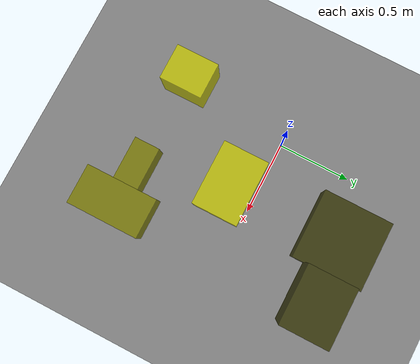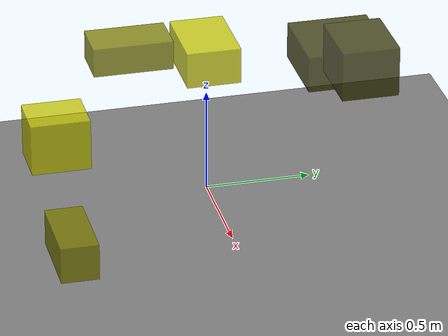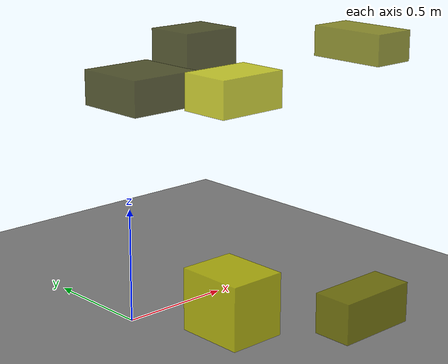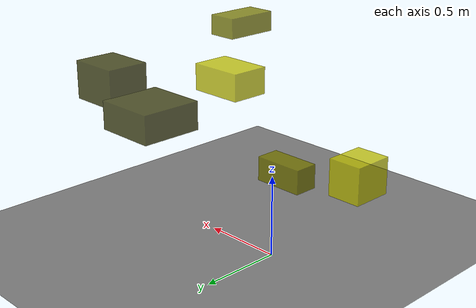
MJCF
<?xml version="1.0"?>
<mujoco model="obstacle_scene">
  <compiler angle="radian" coordinate="local"/>
  <option timestep="0.001" gravity="0 0 -9.81"/>

  <asset>
    <material name="obstacle_mat" rgba="0.8 0.8 0.0 0.8"/>
    <material name="ground_mat" rgba="0.5 0.5 0.5 1"/>
  </asset>

  <worldbody>
    <!-- Ground plane -->
    <geom name="ground" type="plane" size="3 3 0.1" material="ground_mat"/>

    <!-- Obstacles -->
    <body name="obstacle_0" pos="0.468694 0.494965 0.874789">
      <geom name="obs_0" type="box" size="0.185250 0.185542 0.084485" rgba="0.2 0.2 0.0 0.8"/>
    </body>
    <body name="obstacle_1" pos="0.601737 -0.769405 0.127786">
      <geom name="obs_1" type="box" size="0.183512 0.087533 0.087538" rgba="0.5 0.5 0.0 0.8"/>
    </body>
    <body name="obstacle_2" pos="-0.070707 -0.701298 0.321215">
      <geom name="obs_2" type="box" size="0.117187 0.140512 0.124926" rgba="0.8 0.8 0.0 0.8"/>
    </body>
    <body name="obstacle_3" pos="0.806247 0.502531 1.005092">
      <geom name="obs_3" type="box" size="0.156576 0.128299 0.113981" rgba="0.2 0.2 0.0 0.8"/>
    </body>
    <body name="obstacle_4" pos="0.811143 -0.541745 1.177367">
      <geom name="obs_4" type="box" size="0.096599 0.174323 0.064604" rgba="0.5 0.5 0.0 0.8"/>
    </body>
    <body name="obstacle_5" pos="0.478915 -0.123525 0.958553">
      <geom name="obs_5" type="box" size="0.171859 0.121220 0.083208" rgba="0.8 0.8 0.0 0.8"/>
    </body>
  </worldbody>
</mujoco>
